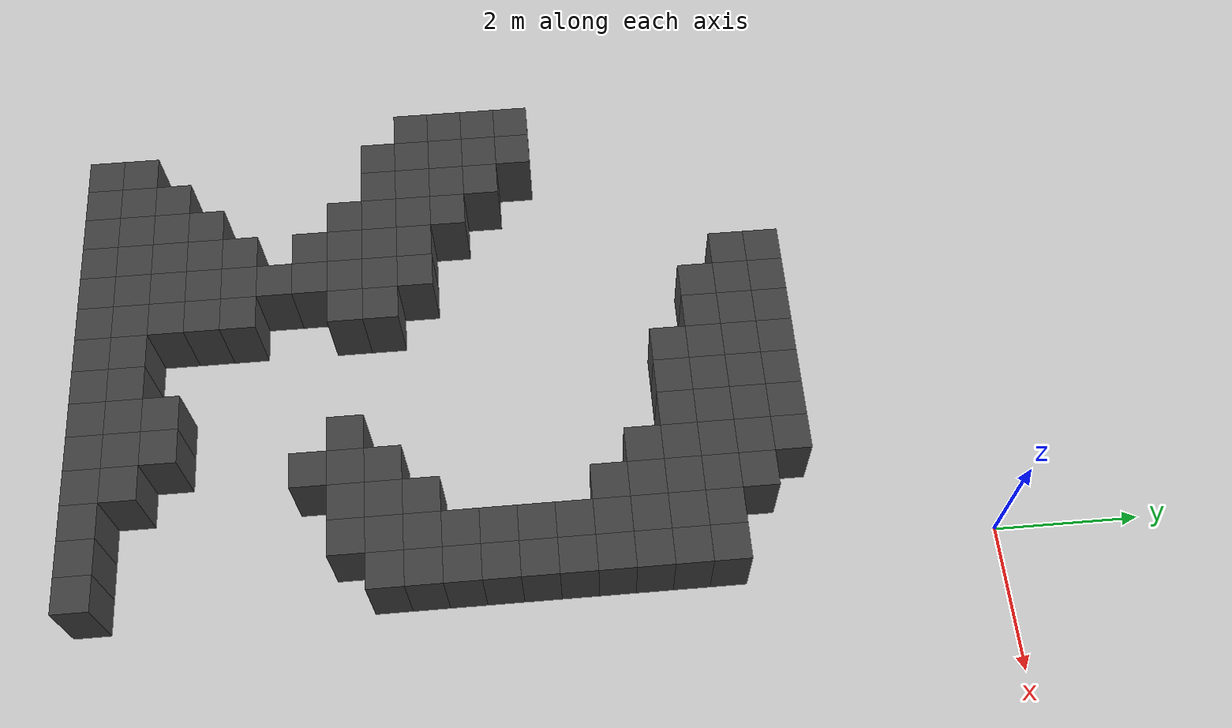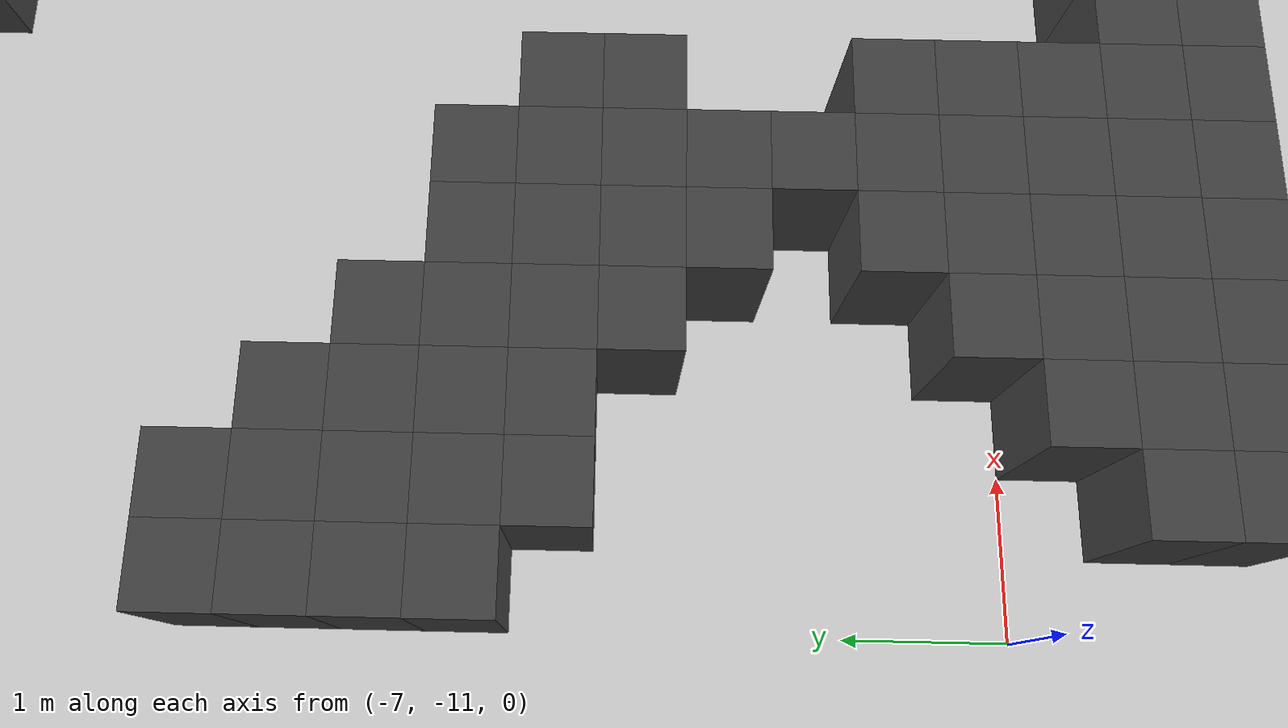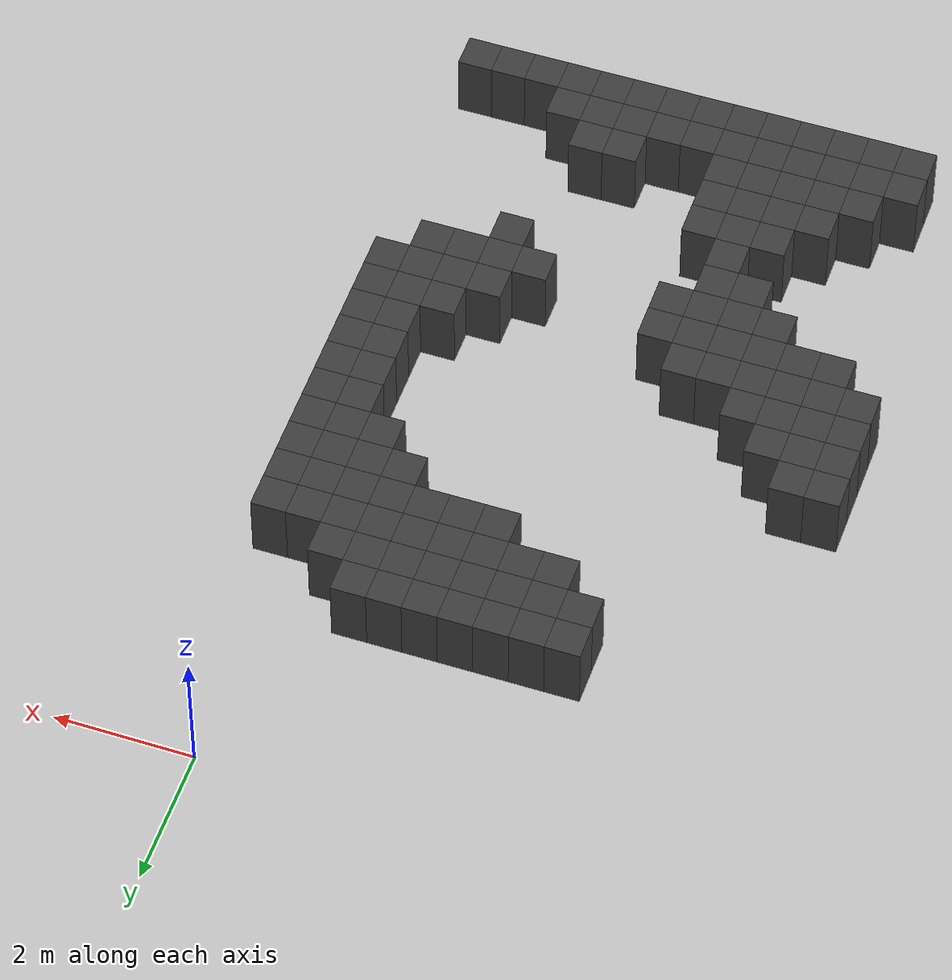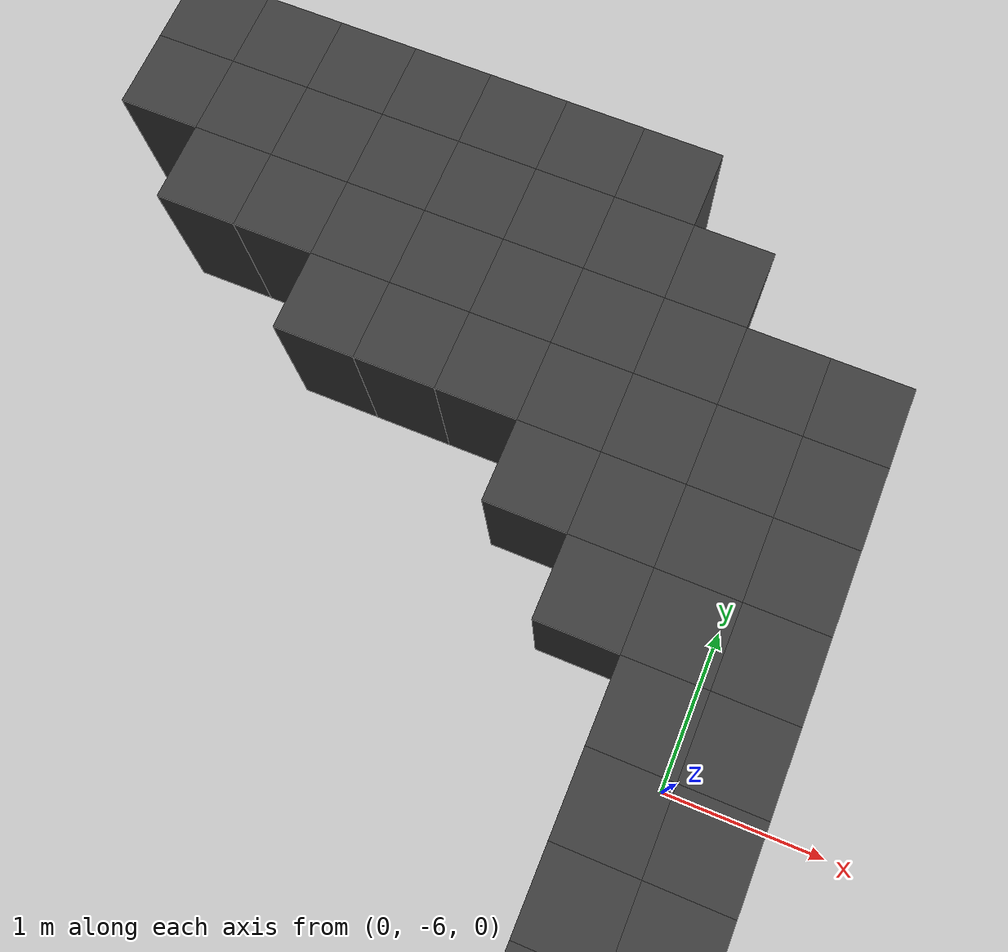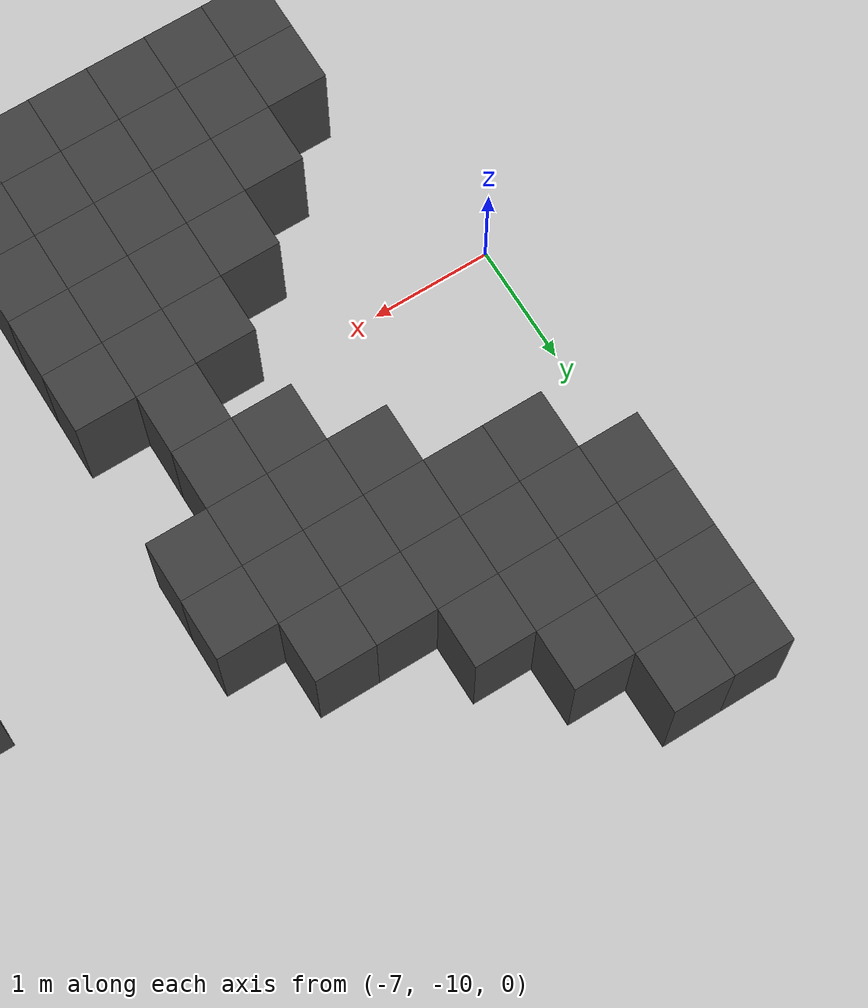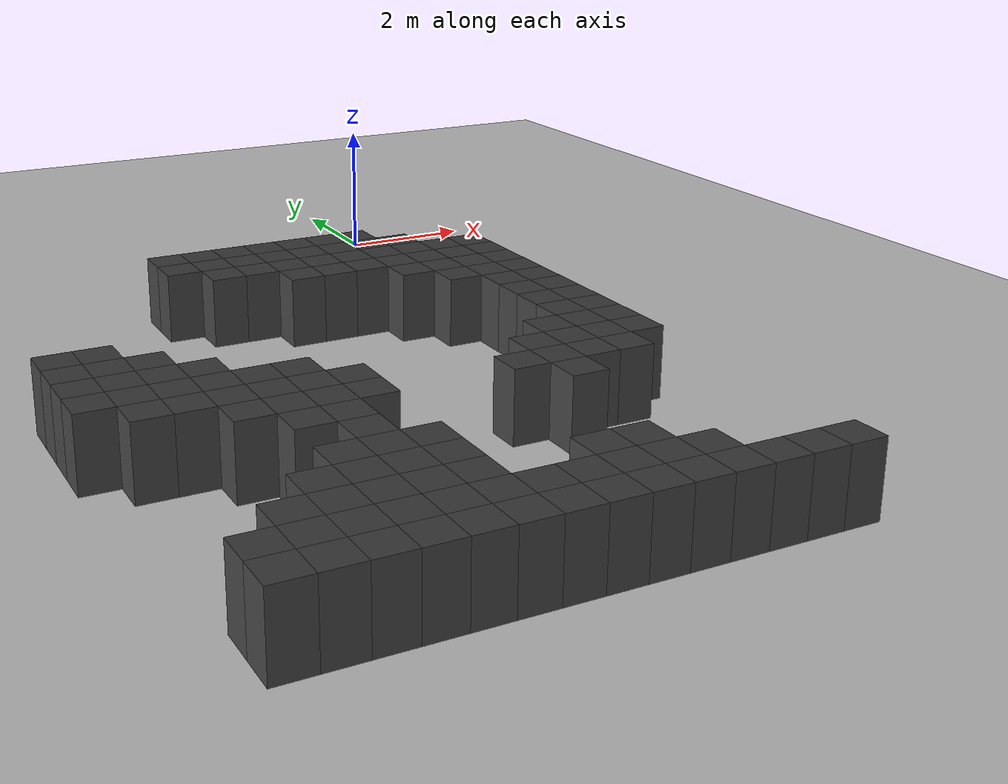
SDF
<sdf version="1.7">
 <world name="map_9687">
  <model name="ground_plane">
   <static>true</static>
   <link name="link">
    <collision name="collision">
     <geometry><plane><normal>0 0 1</normal><size>200 200</size></plane></geometry>
    </collision>
    <visual name="visual">
     <geometry><plane><normal>0 0 1</normal><size>200 200</size></plane></geometry>
     <material><ambient>0.8 0.8 0.8 1</ambient><diffuse>0.8 0.8 0.8 1</diffuse></material>
    </visual>
   </link>
  </model>
  <model name="maze_environment">
   <static>true</static>
   <link name="wall_581">
    <pose>-4.250 -2.750 0.500 0 0 0</pose>
    <collision name="col"><geometry><box><size>0.5 0.5 1.0</size></box></geometry></collision>
    <visual name="vis">
     <geometry><box><size>0.5 0.5 1.0</size></box></geometry>
     <material><ambient>0.15 0.15 0.15 1</ambient><diffuse>0.25 0.25 0.25 1</diffuse></material>
    </visual>
   </link>
   <link name="wall_582">
    <pose>-3.750 -2.750 0.500 0 0 0</pose>
    <collision name="col"><geometry><box><size>0.5 0.5 1.0</size></box></geometry></collision>
    <visual name="vis">
     <geometry><box><size>0.5 0.5 1.0</size></box></geometry>
     <material><ambient>0.15 0.15 0.15 1</ambient><diffuse>0.25 0.25 0.25 1</diffuse></material>
    </visual>
   </link>
   <link name="wall_583">
    <pose>-3.250 -2.750 0.500 0 0 0</pose>
    <collision name="col"><geometry><box><size>0.5 0.5 1.0</size></box></geometry></collision>
    <visual name="vis">
     <geometry><box><size>0.5 0.5 1.0</size></box></geometry>
     <material><ambient>0.15 0.15 0.15 1</ambient><diffuse>0.25 0.25 0.25 1</diffuse></material>
    </visual>
   </link>
   <link name="wall_584">
    <pose>-2.750 -2.750 0.500 0 0 0</pose>
    <collision name="col"><geometry><box><size>0.5 0.5 1.0</size></box></geometry></collision>
    <visual name="vis">
     <geometry><box><size>0.5 0.5 1.0</size></box></geometry>
     <material><ambient>0.15 0.15 0.15 1</ambient><diffuse>0.25 0.25 0.25 1</diffuse></material>
    </visual>
   </link>
   <link name="wall_585">
    <pose>-2.250 -2.750 0.500 0 0 0</pose>
    <collision name="col"><geometry><box><size>0.5 0.5 1.0</size></box></geometry></collision>
    <visual name="vis">
     <geometry><box><size>0.5 0.5 1.0</size></box></geometry>
     <material><ambient>0.15 0.15 0.15 1</ambient><diffuse>0.25 0.25 0.25 1</diffuse></material>
    </visual>
   </link>
   <link name="wall_586">
    <pose>-1.750 -2.750 0.500 0 0 0</pose>
    <collision name="col"><geometry><box><size>0.5 0.5 1.0</size></box></geometry></collision>
    <visual name="vis">
     <geometry><box><size>0.5 0.5 1.0</size></box></geometry>
     <material><ambient>0.15 0.15 0.15 1</ambient><diffuse>0.25 0.25 0.25 1</diffuse></material>
    </visual>
   </link>
   <link name="wall_587">
    <pose>-1.250 -2.750 0.500 0 0 0</pose>
    <collision name="col"><geometry><box><size>0.5 0.5 1.0</size></box></geometry></collision>
    <visual name="vis">
     <geometry><box><size>0.5 0.5 1.0</size></box></geometry>
     <material><ambient>0.15 0.15 0.15 1</ambient><diffuse>0.25 0.25 0.25 1</diffuse></material>
    </visual>
   </link>
   <link name="wall_609">
    <pose>-4.250 -3.250 0.500 0 0 0</pose>
    <collision name="col"><geometry><box><size>0.5 0.5 1.0</size></box></geometry></collision>
    <visual name="vis">
     <geometry><box><size>0.5 0.5 1.0</size></box></geometry>
     <material><ambient>0.15 0.15 0.15 1</ambient><diffuse>0.25 0.25 0.25 1</diffuse></material>
    </visual>
   </link>
   <link name="wall_610">
    <pose>-3.750 -3.250 0.500 0 0 0</pose>
    <collision name="col"><geometry><box><size>0.5 0.5 1.0</size></box></geometry></collision>
    <visual name="vis">
     <geometry><box><size>0.5 0.5 1.0</size></box></geometry>
     <material><ambient>0.15 0.15 0.15 1</ambient><diffuse>0.25 0.25 0.25 1</diffuse></material>
    </visual>
   </link>
   <link name="wall_611">
    <pose>-3.250 -3.250 0.500 0 0 0</pose>
    <collision name="col"><geometry><box><size>0.5 0.5 1.0</size></box></geometry></collision>
    <visual name="vis">
     <geometry><box><size>0.5 0.5 1.0</size></box></geometry>
     <material><ambient>0.15 0.15 0.15 1</ambient><diffuse>0.25 0.25 0.25 1</diffuse></material>
    </visual>
   </link>
   <link name="wall_612">
    <pose>-2.750 -3.250 0.500 0 0 0</pose>
    <collision name="col"><geometry><box><size>0.5 0.5 1.0</size></box></geometry></collision>
    <visual name="vis">
     <geometry><box><size>0.5 0.5 1.0</size></box></geometry>
     <material><ambient>0.15 0.15 0.15 1</ambient><diffuse>0.25 0.25 0.25 1</diffuse></material>
    </visual>
   </link>
   <link name="wall_613">
    <pose>-2.250 -3.250 0.500 0 0 0</pose>
    <collision name="col"><geometry><box><size>0.5 0.5 1.0</size></box></geometry></collision>
    <visual name="vis">
     <geometry><box><size>0.5 0.5 1.0</size></box></geometry>
     <material><ambient>0.15 0.15 0.15 1</ambient><diffuse>0.25 0.25 0.25 1</diffuse></material>
    </visual>
   </link>
   <link name="wall_614">
    <pose>-1.750 -3.250 0.500 0 0 0</pose>
    <collision name="col"><geometry><box><size>0.5 0.5 1.0</size></box></geometry></collision>
    <visual name="vis">
     <geometry><box><size>0.5 0.5 1.0</size></box></geometry>
     <material><ambient>0.15 0.15 0.15 1</ambient><diffuse>0.25 0.25 0.25 1</diffuse></material>
    </visual>
   </link>
   <link name="wall_615">
    <pose>-1.250 -3.250 0.500 0 0 0</pose>
    <collision name="col"><geometry><box><size>0.5 0.5 1.0</size></box></geometry></collision>
    <visual name="vis">
     <geometry><box><size>0.5 0.5 1.0</size></box></geometry>
     <material><ambient>0.15 0.15 0.15 1</ambient><diffuse>0.25 0.25 0.25 1</diffuse></material>
    </visual>
   </link>
   <link name="wall_616">
    <pose>-0.750 -3.250 0.500 0 0 0</pose>
    <collision name="col"><geometry><box><size>0.5 0.5 1.0</size></box></geometry></collision>
    <visual name="vis">
     <geometry><box><size>0.5 0.5 1.0</size></box></geometry>
     <material><ambient>0.15 0.15 0.15 1</ambient><diffuse>0.25 0.25 0.25 1</diffuse></material>
    </visual>
   </link>
   <link name="wall_637">
    <pose>-3.750 -3.750 0.500 0 0 0</pose>
    <collision name="col"><geometry><box><size>0.5 0.5 1.0</size></box></geometry></collision>
    <visual name="vis">
     <geometry><box><size>0.5 0.5 1.0</size></box></geometry>
     <material><ambient>0.15 0.15 0.15 1</ambient><diffuse>0.25 0.25 0.25 1</diffuse></material>
    </visual>
   </link>
   <link name="wall_638">
    <pose>-3.250 -3.750 0.500 0 0 0</pose>
    <collision name="col"><geometry><box><size>0.5 0.5 1.0</size></box></geometry></collision>
    <visual name="vis">
     <geometry><box><size>0.5 0.5 1.0</size></box></geometry>
     <material><ambient>0.15 0.15 0.15 1</ambient><diffuse>0.25 0.25 0.25 1</diffuse></material>
    </visual>
   </link>
   <link name="wall_639">
    <pose>-2.750 -3.750 0.500 0 0 0</pose>
    <collision name="col"><geometry><box><size>0.5 0.5 1.0</size></box></geometry></collision>
    <visual name="vis">
     <geometry><box><size>0.5 0.5 1.0</size></box></geometry>
     <material><ambient>0.15 0.15 0.15 1</ambient><diffuse>0.25 0.25 0.25 1</diffuse></material>
    </visual>
   </link>
   <link name="wall_640">
    <pose>-2.250 -3.750 0.500 0 0 0</pose>
    <collision name="col"><geometry><box><size>0.5 0.5 1.0</size></box></geometry></collision>
    <visual name="vis">
     <geometry><box><size>0.5 0.5 1.0</size></box></geometry>
     <material><ambient>0.15 0.15 0.15 1</ambient><diffuse>0.25 0.25 0.25 1</diffuse></material>
    </visual>
   </link>
   <link name="wall_641">
    <pose>-1.750 -3.750 0.500 0 0 0</pose>
    <collision name="col"><geometry><box><size>0.5 0.5 1.0</size></box></geometry></collision>
    <visual name="vis">
     <geometry><box><size>0.5 0.5 1.0</size></box></geometry>
     <material><ambient>0.15 0.15 0.15 1</ambient><diffuse>0.25 0.25 0.25 1</diffuse></material>
    </visual>
   </link>
   <link name="wall_642">
    <pose>-1.250 -3.750 0.500 0 0 0</pose>
    <collision name="col"><geometry><box><size>0.5 0.5 1.0</size></box></geometry></collision>
    <visual name="vis">
     <geometry><box><size>0.5 0.5 1.0</size></box></geometry>
     <material><ambient>0.15 0.15 0.15 1</ambient><diffuse>0.25 0.25 0.25 1</diffuse></material>
    </visual>
   </link>
   <link name="wall_643">
    <pose>-0.750 -3.750 0.500 0 0 0</pose>
    <collision name="col"><geometry><box><size>0.5 0.5 1.0</size></box></geometry></collision>
    <visual name="vis">
     <geometry><box><size>0.5 0.5 1.0</size></box></geometry>
     <material><ambient>0.15 0.15 0.15 1</ambient><diffuse>0.25 0.25 0.25 1</diffuse></material>
    </visual>
   </link>
   <link name="wall_644">
    <pose>-0.250 -3.750 0.500 0 0 0</pose>
    <collision name="col"><geometry><box><size>0.5 0.5 1.0</size></box></geometry></collision>
    <visual name="vis">
     <geometry><box><size>0.5 0.5 1.0</size></box></geometry>
     <material><ambient>0.15 0.15 0.15 1</ambient><diffuse>0.25 0.25 0.25 1</diffuse></material>
    </visual>
   </link>
   <link name="wall_645">
    <pose>0.250 -3.750 0.500 0 0 0</pose>
    <collision name="col"><geometry><box><size>0.5 0.5 1.0</size></box></geometry></collision>
    <visual name="vis">
     <geometry><box><size>0.5 0.5 1.0</size></box></geometry>
     <material><ambient>0.15 0.15 0.15 1</ambient><diffuse>0.25 0.25 0.25 1</diffuse></material>
    </visual>
   </link>
   <link name="wall_666">
    <pose>-2.750 -4.250 0.500 0 0 0</pose>
    <collision name="col"><geometry><box><size>0.5 0.5 1.0</size></box></geometry></collision>
    <visual name="vis">
     <geometry><box><size>0.5 0.5 1.0</size></box></geometry>
     <material><ambient>0.15 0.15 0.15 1</ambient><diffuse>0.25 0.25 0.25 1</diffuse></material>
    </visual>
   </link>
   <link name="wall_667">
    <pose>-2.250 -4.250 0.500 0 0 0</pose>
    <collision name="col"><geometry><box><size>0.5 0.5 1.0</size></box></geometry></collision>
    <visual name="vis">
     <geometry><box><size>0.5 0.5 1.0</size></box></geometry>
     <material><ambient>0.15 0.15 0.15 1</ambient><diffuse>0.25 0.25 0.25 1</diffuse></material>
    </visual>
   </link>
   <link name="wall_668">
    <pose>-1.750 -4.250 0.500 0 0 0</pose>
    <collision name="col"><geometry><box><size>0.5 0.5 1.0</size></box></geometry></collision>
    <visual name="vis">
     <geometry><box><size>0.5 0.5 1.0</size></box></geometry>
     <material><ambient>0.15 0.15 0.15 1</ambient><diffuse>0.25 0.25 0.25 1</diffuse></material>
    </visual>
   </link>
   <link name="wall_669">
    <pose>-1.250 -4.250 0.500 0 0 0</pose>
    <collision name="col"><geometry><box><size>0.5 0.5 1.0</size></box></geometry></collision>
    <visual name="vis">
     <geometry><box><size>0.5 0.5 1.0</size></box></geometry>
     <material><ambient>0.15 0.15 0.15 1</ambient><diffuse>0.25 0.25 0.25 1</diffuse></material>
    </visual>
   </link>
   <link name="wall_670">
    <pose>-0.750 -4.250 0.500 0 0 0</pose>
    <collision name="col"><geometry><box><size>0.5 0.5 1.0</size></box></geometry></collision>
    <visual name="vis">
     <geometry><box><size>0.5 0.5 1.0</size></box></geometry>
     <material><ambient>0.15 0.15 0.15 1</ambient><diffuse>0.25 0.25 0.25 1</diffuse></material>
    </visual>
   </link>
   <link name="wall_671">
    <pose>-0.250 -4.250 0.500 0 0 0</pose>
    <collision name="col"><geometry><box><size>0.5 0.5 1.0</size></box></geometry></collision>
    <visual name="vis">
     <geometry><box><size>0.5 0.5 1.0</size></box></geometry>
     <material><ambient>0.15 0.15 0.15 1</ambient><diffuse>0.25 0.25 0.25 1</diffuse></material>
    </visual>
   </link>
   <link name="wall_672">
    <pose>0.250 -4.250 0.500 0 0 0</pose>
    <collision name="col"><geometry><box><size>0.5 0.5 1.0</size></box></geometry></collision>
    <visual name="vis">
     <geometry><box><size>0.5 0.5 1.0</size></box></geometry>
     <material><ambient>0.15 0.15 0.15 1</ambient><diffuse>0.25 0.25 0.25 1</diffuse></material>
    </visual>
   </link>
   <link name="wall_692">
    <pose>-1.250 -4.750 0.500 0 0 0</pose>
    <collision name="col"><geometry><box><size>0.5 0.5 1.0</size></box></geometry></collision>
    <visual name="vis">
     <geometry><box><size>0.5 0.5 1.0</size></box></geometry>
     <material><ambient>0.15 0.15 0.15 1</ambient><diffuse>0.25 0.25 0.25 1</diffuse></material>
    </visual>
   </link>
   <link name="wall_693">
    <pose>-0.750 -4.750 0.500 0 0 0</pose>
    <collision name="col"><geometry><box><size>0.5 0.5 1.0</size></box></geometry></collision>
    <visual name="vis">
     <geometry><box><size>0.5 0.5 1.0</size></box></geometry>
     <material><ambient>0.15 0.15 0.15 1</ambient><diffuse>0.25 0.25 0.25 1</diffuse></material>
    </visual>
   </link>
   <link name="wall_694">
    <pose>-0.250 -4.750 0.500 0 0 0</pose>
    <collision name="col"><geometry><box><size>0.5 0.5 1.0</size></box></geometry></collision>
    <visual name="vis">
     <geometry><box><size>0.5 0.5 1.0</size></box></geometry>
     <material><ambient>0.15 0.15 0.15 1</ambient><diffuse>0.25 0.25 0.25 1</diffuse></material>
    </visual>
   </link>
   <link name="wall_695">
    <pose>0.250 -4.750 0.500 0 0 0</pose>
    <collision name="col"><geometry><box><size>0.5 0.5 1.0</size></box></geometry></collision>
    <visual name="vis">
     <geometry><box><size>0.5 0.5 1.0</size></box></geometry>
     <material><ambient>0.15 0.15 0.15 1</ambient><diffuse>0.25 0.25 0.25 1</diffuse></material>
    </visual>
   </link>
   <link name="wall_715">
    <pose>-0.750 -5.250 0.500 0 0 0</pose>
    <collision name="col"><geometry><box><size>0.5 0.5 1.0</size></box></geometry></collision>
    <visual name="vis">
     <geometry><box><size>0.5 0.5 1.0</size></box></geometry>
     <material><ambient>0.15 0.15 0.15 1</ambient><diffuse>0.25 0.25 0.25 1</diffuse></material>
    </visual>
   </link>
   <link name="wall_716">
    <pose>-0.250 -5.250 0.500 0 0 0</pose>
    <collision name="col"><geometry><box><size>0.5 0.5 1.0</size></box></geometry></collision>
    <visual name="vis">
     <geometry><box><size>0.5 0.5 1.0</size></box></geometry>
     <material><ambient>0.15 0.15 0.15 1</ambient><diffuse>0.25 0.25 0.25 1</diffuse></material>
    </visual>
   </link>
   <link name="wall_717">
    <pose>0.250 -5.250 0.500 0 0 0</pose>
    <collision name="col"><geometry><box><size>0.5 0.5 1.0</size></box></geometry></collision>
    <visual name="vis">
     <geometry><box><size>0.5 0.5 1.0</size></box></geometry>
     <material><ambient>0.15 0.15 0.15 1</ambient><diffuse>0.25 0.25 0.25 1</diffuse></material>
    </visual>
   </link>
   <link name="wall_735">
    <pose>-0.250 -5.750 0.500 0 0 0</pose>
    <collision name="col"><geometry><box><size>0.5 0.5 1.0</size></box></geometry></collision>
    <visual name="vis">
     <geometry><box><size>0.5 0.5 1.0</size></box></geometry>
     <material><ambient>0.15 0.15 0.15 1</ambient><diffuse>0.25 0.25 0.25 1</diffuse></material>
    </visual>
   </link>
   <link name="wall_736">
    <pose>0.250 -5.750 0.500 0 0 0</pose>
    <collision name="col"><geometry><box><size>0.5 0.5 1.0</size></box></geometry></collision>
    <visual name="vis">
     <geometry><box><size>0.5 0.5 1.0</size></box></geometry>
     <material><ambient>0.15 0.15 0.15 1</ambient><diffuse>0.25 0.25 0.25 1</diffuse></material>
    </visual>
   </link>
   <link name="wall_750">
    <pose>-6.750 -6.250 0.500 0 0 0</pose>
    <collision name="col"><geometry><box><size>0.5 0.5 1.0</size></box></geometry></collision>
    <visual name="vis">
     <geometry><box><size>0.5 0.5 1.0</size></box></geometry>
     <material><ambient>0.15 0.15 0.15 1</ambient><diffuse>0.25 0.25 0.25 1</diffuse></material>
    </visual>
   </link>
   <link name="wall_751">
    <pose>-6.250 -6.250 0.500 0 0 0</pose>
    <collision name="col"><geometry><box><size>0.5 0.5 1.0</size></box></geometry></collision>
    <visual name="vis">
     <geometry><box><size>0.5 0.5 1.0</size></box></geometry>
     <material><ambient>0.15 0.15 0.15 1</ambient><diffuse>0.25 0.25 0.25 1</diffuse></material>
    </visual>
   </link>
   <link name="wall_752">
    <pose>-0.250 -6.250 0.500 0 0 0</pose>
    <collision name="col"><geometry><box><size>0.5 0.5 1.0</size></box></geometry></collision>
    <visual name="vis">
     <geometry><box><size>0.5 0.5 1.0</size></box></geometry>
     <material><ambient>0.15 0.15 0.15 1</ambient><diffuse>0.25 0.25 0.25 1</diffuse></material>
    </visual>
   </link>
   <link name="wall_753">
    <pose>0.250 -6.250 0.500 0 0 0</pose>
    <collision name="col"><geometry><box><size>0.5 0.5 1.0</size></box></geometry></collision>
    <visual name="vis">
     <geometry><box><size>0.5 0.5 1.0</size></box></geometry>
     <material><ambient>0.15 0.15 0.15 1</ambient><diffuse>0.25 0.25 0.25 1</diffuse></material>
    </visual>
   </link>
   <link name="wall_764">
    <pose>-6.750 -6.750 0.500 0 0 0</pose>
    <collision name="col"><geometry><box><size>0.5 0.5 1.0</size></box></geometry></collision>
    <visual name="vis">
     <geometry><box><size>0.5 0.5 1.0</size></box></geometry>
     <material><ambient>0.15 0.15 0.15 1</ambient><diffuse>0.25 0.25 0.25 1</diffuse></material>
    </visual>
   </link>
   <link name="wall_765">
    <pose>-6.250 -6.750 0.500 0 0 0</pose>
    <collision name="col"><geometry><box><size>0.5 0.5 1.0</size></box></geometry></collision>
    <visual name="vis">
     <geometry><box><size>0.5 0.5 1.0</size></box></geometry>
     <material><ambient>0.15 0.15 0.15 1</ambient><diffuse>0.25 0.25 0.25 1</diffuse></material>
    </visual>
   </link>
   <link name="wall_766">
    <pose>-5.750 -6.750 0.500 0 0 0</pose>
    <collision name="col"><geometry><box><size>0.5 0.5 1.0</size></box></geometry></collision>
    <visual name="vis">
     <geometry><box><size>0.5 0.5 1.0</size></box></geometry>
     <material><ambient>0.15 0.15 0.15 1</ambient><diffuse>0.25 0.25 0.25 1</diffuse></material>
    </visual>
   </link>
   <link name="wall_767">
    <pose>-0.250 -6.750 0.500 0 0 0</pose>
    <collision name="col"><geometry><box><size>0.5 0.5 1.0</size></box></geometry></collision>
    <visual name="vis">
     <geometry><box><size>0.5 0.5 1.0</size></box></geometry>
     <material><ambient>0.15 0.15 0.15 1</ambient><diffuse>0.25 0.25 0.25 1</diffuse></material>
    </visual>
   </link>
   <link name="wall_768">
    <pose>0.250 -6.750 0.500 0 0 0</pose>
    <collision name="col"><geometry><box><size>0.5 0.5 1.0</size></box></geometry></collision>
    <visual name="vis">
     <geometry><box><size>0.5 0.5 1.0</size></box></geometry>
     <material><ambient>0.15 0.15 0.15 1</ambient><diffuse>0.25 0.25 0.25 1</diffuse></material>
    </visual>
   </link>
   <link name="wall_779">
    <pose>-6.750 -7.250 0.500 0 0 0</pose>
    <collision name="col"><geometry><box><size>0.5 0.5 1.0</size></box></geometry></collision>
    <visual name="vis">
     <geometry><box><size>0.5 0.5 1.0</size></box></geometry>
     <material><ambient>0.15 0.15 0.15 1</ambient><diffuse>0.25 0.25 0.25 1</diffuse></material>
    </visual>
   </link>
   <link name="wall_780">
    <pose>-6.250 -7.250 0.500 0 0 0</pose>
    <collision name="col"><geometry><box><size>0.5 0.5 1.0</size></box></geometry></collision>
    <visual name="vis">
     <geometry><box><size>0.5 0.5 1.0</size></box></geometry>
     <material><ambient>0.15 0.15 0.15 1</ambient><diffuse>0.25 0.25 0.25 1</diffuse></material>
    </visual>
   </link>
   <link name="wall_781">
    <pose>-5.750 -7.250 0.500 0 0 0</pose>
    <collision name="col"><geometry><box><size>0.5 0.5 1.0</size></box></geometry></collision>
    <visual name="vis">
     <geometry><box><size>0.5 0.5 1.0</size></box></geometry>
     <material><ambient>0.15 0.15 0.15 1</ambient><diffuse>0.25 0.25 0.25 1</diffuse></material>
    </visual>
   </link>
   <link name="wall_782">
    <pose>-5.250 -7.250 0.500 0 0 0</pose>
    <collision name="col"><geometry><box><size>0.5 0.5 1.0</size></box></geometry></collision>
    <visual name="vis">
     <geometry><box><size>0.5 0.5 1.0</size></box></geometry>
     <material><ambient>0.15 0.15 0.15 1</ambient><diffuse>0.25 0.25 0.25 1</diffuse></material>
    </visual>
   </link>
   <link name="wall_783">
    <pose>-0.250 -7.250 0.500 0 0 0</pose>
    <collision name="col"><geometry><box><size>0.5 0.5 1.0</size></box></geometry></collision>
    <visual name="vis">
     <geometry><box><size>0.5 0.5 1.0</size></box></geometry>
     <material><ambient>0.15 0.15 0.15 1</ambient><diffuse>0.25 0.25 0.25 1</diffuse></material>
    </visual>
   </link>
   <link name="wall_784">
    <pose>0.250 -7.250 0.500 0 0 0</pose>
    <collision name="col"><geometry><box><size>0.5 0.5 1.0</size></box></geometry></collision>
    <visual name="vis">
     <geometry><box><size>0.5 0.5 1.0</size></box></geometry>
     <material><ambient>0.15 0.15 0.15 1</ambient><diffuse>0.25 0.25 0.25 1</diffuse></material>
    </visual>
   </link>
   <link name="wall_794">
    <pose>-6.750 -7.750 0.500 0 0 0</pose>
    <collision name="col"><geometry><box><size>0.5 0.5 1.0</size></box></geometry></collision>
    <visual name="vis">
     <geometry><box><size>0.5 0.5 1.0</size></box></geometry>
     <material><ambient>0.15 0.15 0.15 1</ambient><diffuse>0.25 0.25 0.25 1</diffuse></material>
    </visual>
   </link>
   <link name="wall_795">
    <pose>-6.250 -7.750 0.500 0 0 0</pose>
    <collision name="col"><geometry><box><size>0.5 0.5 1.0</size></box></geometry></collision>
    <visual name="vis">
     <geometry><box><size>0.5 0.5 1.0</size></box></geometry>
     <material><ambient>0.15 0.15 0.15 1</ambient><diffuse>0.25 0.25 0.25 1</diffuse></material>
    </visual>
   </link>
   <link name="wall_796">
    <pose>-5.750 -7.750 0.500 0 0 0</pose>
    <collision name="col"><geometry><box><size>0.5 0.5 1.0</size></box></geometry></collision>
    <visual name="vis">
     <geometry><box><size>0.5 0.5 1.0</size></box></geometry>
     <material><ambient>0.15 0.15 0.15 1</ambient><diffuse>0.25 0.25 0.25 1</diffuse></material>
    </visual>
   </link>
   <link name="wall_797">
    <pose>-5.250 -7.750 0.500 0 0 0</pose>
    <collision name="col"><geometry><box><size>0.5 0.5 1.0</size></box></geometry></collision>
    <visual name="vis">
     <geometry><box><size>0.5 0.5 1.0</size></box></geometry>
     <material><ambient>0.15 0.15 0.15 1</ambient><diffuse>0.25 0.25 0.25 1</diffuse></material>
    </visual>
   </link>
   <link name="wall_798">
    <pose>-4.750 -7.750 0.500 0 0 0</pose>
    <collision name="col"><geometry><box><size>0.5 0.5 1.0</size></box></geometry></collision>
    <visual name="vis">
     <geometry><box><size>0.5 0.5 1.0</size></box></geometry>
     <material><ambient>0.15 0.15 0.15 1</ambient><diffuse>0.25 0.25 0.25 1</diffuse></material>
    </visual>
   </link>
   <link name="wall_799">
    <pose>-4.250 -7.750 0.500 0 0 0</pose>
    <collision name="col"><geometry><box><size>0.5 0.5 1.0</size></box></geometry></collision>
    <visual name="vis">
     <geometry><box><size>0.5 0.5 1.0</size></box></geometry>
     <material><ambient>0.15 0.15 0.15 1</ambient><diffuse>0.25 0.25 0.25 1</diffuse></material>
    </visual>
   </link>
   <link name="wall_800">
    <pose>-0.750 -7.750 0.500 0 0 0</pose>
    <collision name="col"><geometry><box><size>0.5 0.5 1.0</size></box></geometry></collision>
    <visual name="vis">
     <geometry><box><size>0.5 0.5 1.0</size></box></geometry>
     <material><ambient>0.15 0.15 0.15 1</ambient><diffuse>0.25 0.25 0.25 1</diffuse></material>
    </visual>
   </link>
   <link name="wall_801">
    <pose>-0.250 -7.750 0.500 0 0 0</pose>
    <collision name="col"><geometry><box><size>0.5 0.5 1.0</size></box></geometry></collision>
    <visual name="vis">
     <geometry><box><size>0.5 0.5 1.0</size></box></geometry>
     <material><ambient>0.15 0.15 0.15 1</ambient><diffuse>0.25 0.25 0.25 1</diffuse></material>
    </visual>
   </link>
   <link name="wall_802">
    <pose>0.250 -7.750 0.500 0 0 0</pose>
    <collision name="col"><geometry><box><size>0.5 0.5 1.0</size></box></geometry></collision>
    <visual name="vis">
     <geometry><box><size>0.5 0.5 1.0</size></box></geometry>
     <material><ambient>0.15 0.15 0.15 1</ambient><diffuse>0.25 0.25 0.25 1</diffuse></material>
    </visual>
   </link>
   <link name="wall_811">
    <pose>-6.250 -8.250 0.500 0 0 0</pose>
    <collision name="col"><geometry><box><size>0.5 0.5 1.0</size></box></geometry></collision>
    <visual name="vis">
     <geometry><box><size>0.5 0.5 1.0</size></box></geometry>
     <material><ambient>0.15 0.15 0.15 1</ambient><diffuse>0.25 0.25 0.25 1</diffuse></material>
    </visual>
   </link>
   <link name="wall_812">
    <pose>-5.750 -8.250 0.500 0 0 0</pose>
    <collision name="col"><geometry><box><size>0.5 0.5 1.0</size></box></geometry></collision>
    <visual name="vis">
     <geometry><box><size>0.5 0.5 1.0</size></box></geometry>
     <material><ambient>0.15 0.15 0.15 1</ambient><diffuse>0.25 0.25 0.25 1</diffuse></material>
    </visual>
   </link>
   <link name="wall_813">
    <pose>-5.250 -8.250 0.500 0 0 0</pose>
    <collision name="col"><geometry><box><size>0.5 0.5 1.0</size></box></geometry></collision>
    <visual name="vis">
     <geometry><box><size>0.5 0.5 1.0</size></box></geometry>
     <material><ambient>0.15 0.15 0.15 1</ambient><diffuse>0.25 0.25 0.25 1</diffuse></material>
    </visual>
   </link>
   <link name="wall_814">
    <pose>-4.750 -8.250 0.500 0 0 0</pose>
    <collision name="col"><geometry><box><size>0.5 0.5 1.0</size></box></geometry></collision>
    <visual name="vis">
     <geometry><box><size>0.5 0.5 1.0</size></box></geometry>
     <material><ambient>0.15 0.15 0.15 1</ambient><diffuse>0.25 0.25 0.25 1</diffuse></material>
    </visual>
   </link>
   <link name="wall_815">
    <pose>-4.250 -8.250 0.500 0 0 0</pose>
    <collision name="col"><geometry><box><size>0.5 0.5 1.0</size></box></geometry></collision>
    <visual name="vis">
     <geometry><box><size>0.5 0.5 1.0</size></box></geometry>
     <material><ambient>0.15 0.15 0.15 1</ambient><diffuse>0.25 0.25 0.25 1</diffuse></material>
    </visual>
   </link>
   <link name="wall_816">
    <pose>-3.750 -8.250 0.500 0 0 0</pose>
    <collision name="col"><geometry><box><size>0.5 0.5 1.0</size></box></geometry></collision>
    <visual name="vis">
     <geometry><box><size>0.5 0.5 1.0</size></box></geometry>
     <material><ambient>0.15 0.15 0.15 1</ambient><diffuse>0.25 0.25 0.25 1</diffuse></material>
    </visual>
   </link>
   <link name="wall_817">
    <pose>-1.250 -8.250 0.500 0 0 0</pose>
    <collision name="col"><geometry><box><size>0.5 0.5 1.0</size></box></geometry></collision>
    <visual name="vis">
     <geometry><box><size>0.5 0.5 1.0</size></box></geometry>
     <material><ambient>0.15 0.15 0.15 1</ambient><diffuse>0.25 0.25 0.25 1</diffuse></material>
    </visual>
   </link>
   <link name="wall_818">
    <pose>-0.750 -8.250 0.500 0 0 0</pose>
    <collision name="col"><geometry><box><size>0.5 0.5 1.0</size></box></geometry></collision>
    <visual name="vis">
     <geometry><box><size>0.5 0.5 1.0</size></box></geometry>
     <material><ambient>0.15 0.15 0.15 1</ambient><diffuse>0.25 0.25 0.25 1</diffuse></material>
    </visual>
   </link>
   <link name="wall_819">
    <pose>-0.250 -8.250 0.500 0 0 0</pose>
    <collision name="col"><geometry><box><size>0.5 0.5 1.0</size></box></geometry></collision>
    <visual name="vis">
     <geometry><box><size>0.5 0.5 1.0</size></box></geometry>
     <material><ambient>0.15 0.15 0.15 1</ambient><diffuse>0.25 0.25 0.25 1</diffuse></material>
    </visual>
   </link>
   <link name="wall_820">
    <pose>0.250 -8.250 0.500 0 0 0</pose>
    <collision name="col"><geometry><box><size>0.5 0.5 1.0</size></box></geometry></collision>
    <visual name="vis">
     <geometry><box><size>0.5 0.5 1.0</size></box></geometry>
     <material><ambient>0.15 0.15 0.15 1</ambient><diffuse>0.25 0.25 0.25 1</diffuse></material>
    </visual>
   </link>
   <link name="wall_831">
    <pose>-5.250 -8.750 0.500 0 0 0</pose>
    <collision name="col"><geometry><box><size>0.5 0.5 1.0</size></box></geometry></collision>
    <visual name="vis">
     <geometry><box><size>0.5 0.5 1.0</size></box></geometry>
     <material><ambient>0.15 0.15 0.15 1</ambient><diffuse>0.25 0.25 0.25 1</diffuse></material>
    </visual>
   </link>
   <link name="wall_832">
    <pose>-4.750 -8.750 0.500 0 0 0</pose>
    <collision name="col"><geometry><box><size>0.5 0.5 1.0</size></box></geometry></collision>
    <visual name="vis">
     <geometry><box><size>0.5 0.5 1.0</size></box></geometry>
     <material><ambient>0.15 0.15 0.15 1</ambient><diffuse>0.25 0.25 0.25 1</diffuse></material>
    </visual>
   </link>
   <link name="wall_833">
    <pose>-4.250 -8.750 0.500 0 0 0</pose>
    <collision name="col"><geometry><box><size>0.5 0.5 1.0</size></box></geometry></collision>
    <visual name="vis">
     <geometry><box><size>0.5 0.5 1.0</size></box></geometry>
     <material><ambient>0.15 0.15 0.15 1</ambient><diffuse>0.25 0.25 0.25 1</diffuse></material>
    </visual>
   </link>
   <link name="wall_834">
    <pose>-3.750 -8.750 0.500 0 0 0</pose>
    <collision name="col"><geometry><box><size>0.5 0.5 1.0</size></box></geometry></collision>
    <visual name="vis">
     <geometry><box><size>0.5 0.5 1.0</size></box></geometry>
     <material><ambient>0.15 0.15 0.15 1</ambient><diffuse>0.25 0.25 0.25 1</diffuse></material>
    </visual>
   </link>
   <link name="wall_835">
    <pose>-1.750 -8.750 0.500 0 0 0</pose>
    <collision name="col"><geometry><box><size>0.5 0.5 1.0</size></box></geometry></collision>
    <visual name="vis">
     <geometry><box><size>0.5 0.5 1.0</size></box></geometry>
     <material><ambient>0.15 0.15 0.15 1</ambient><diffuse>0.25 0.25 0.25 1</diffuse></material>
    </visual>
   </link>
   <link name="wall_836">
    <pose>-1.250 -8.750 0.500 0 0 0</pose>
    <collision name="col"><geometry><box><size>0.5 0.5 1.0</size></box></geometry></collision>
    <visual name="vis">
     <geometry><box><size>0.5 0.5 1.0</size></box></geometry>
     <material><ambient>0.15 0.15 0.15 1</ambient><diffuse>0.25 0.25 0.25 1</diffuse></material>
    </visual>
   </link>
   <link name="wall_837">
    <pose>-0.750 -8.750 0.500 0 0 0</pose>
    <collision name="col"><geometry><box><size>0.5 0.5 1.0</size></box></geometry></collision>
    <visual name="vis">
     <geometry><box><size>0.5 0.5 1.0</size></box></geometry>
     <material><ambient>0.15 0.15 0.15 1</ambient><diffuse>0.25 0.25 0.25 1</diffuse></material>
    </visual>
   </link>
   <link name="wall_838">
    <pose>-0.250 -8.750 0.500 0 0 0</pose>
    <collision name="col"><geometry><box><size>0.5 0.5 1.0</size></box></geometry></collision>
    <visual name="vis">
     <geometry><box><size>0.5 0.5 1.0</size></box></geometry>
     <material><ambient>0.15 0.15 0.15 1</ambient><diffuse>0.25 0.25 0.25 1</diffuse></material>
    </visual>
   </link>
   <link name="wall_850">
    <pose>-4.750 -9.250 0.500 0 0 0</pose>
    <collision name="col"><geometry><box><size>0.5 0.5 1.0</size></box></geometry></collision>
    <visual name="vis">
     <geometry><box><size>0.5 0.5 1.0</size></box></geometry>
     <material><ambient>0.15 0.15 0.15 1</ambient><diffuse>0.25 0.25 0.25 1</diffuse></material>
    </visual>
   </link>
   <link name="wall_851">
    <pose>-4.250 -9.250 0.500 0 0 0</pose>
    <collision name="col"><geometry><box><size>0.5 0.5 1.0</size></box></geometry></collision>
    <visual name="vis">
     <geometry><box><size>0.5 0.5 1.0</size></box></geometry>
     <material><ambient>0.15 0.15 0.15 1</ambient><diffuse>0.25 0.25 0.25 1</diffuse></material>
    </visual>
   </link>
   <link name="wall_852">
    <pose>-1.250 -9.250 0.500 0 0 0</pose>
    <collision name="col"><geometry><box><size>0.5 0.5 1.0</size></box></geometry></collision>
    <visual name="vis">
     <geometry><box><size>0.5 0.5 1.0</size></box></geometry>
     <material><ambient>0.15 0.15 0.15 1</ambient><diffuse>0.25 0.25 0.25 1</diffuse></material>
    </visual>
   </link>
   <link name="wall_863">
    <pose>-4.250 -9.750 0.500 0 0 0</pose>
    <collision name="col"><geometry><box><size>0.5 0.5 1.0</size></box></geometry></collision>
    <visual name="vis">
     <geometry><box><size>0.5 0.5 1.0</size></box></geometry>
     <material><ambient>0.15 0.15 0.15 1</ambient><diffuse>0.25 0.25 0.25 1</diffuse></material>
    </visual>
   </link>
   <link name="wall_875">
    <pose>-4.750 -10.250 0.500 0 0 0</pose>
    <collision name="col"><geometry><box><size>0.5 0.5 1.0</size></box></geometry></collision>
    <visual name="vis">
     <geometry><box><size>0.5 0.5 1.0</size></box></geometry>
     <material><ambient>0.15 0.15 0.15 1</ambient><diffuse>0.25 0.25 0.25 1</diffuse></material>
    </visual>
   </link>
   <link name="wall_876">
    <pose>-4.250 -10.250 0.500 0 0 0</pose>
    <collision name="col"><geometry><box><size>0.5 0.5 1.0</size></box></geometry></collision>
    <visual name="vis">
     <geometry><box><size>0.5 0.5 1.0</size></box></geometry>
     <material><ambient>0.15 0.15 0.15 1</ambient><diffuse>0.25 0.25 0.25 1</diffuse></material>
    </visual>
   </link>
   <link name="wall_877">
    <pose>-3.750 -10.250 0.500 0 0 0</pose>
    <collision name="col"><geometry><box><size>0.5 0.5 1.0</size></box></geometry></collision>
    <visual name="vis">
     <geometry><box><size>0.5 0.5 1.0</size></box></geometry>
     <material><ambient>0.15 0.15 0.15 1</ambient><diffuse>0.25 0.25 0.25 1</diffuse></material>
    </visual>
   </link>
   <link name="wall_887">
    <pose>-5.250 -10.750 0.500 0 0 0</pose>
    <collision name="col"><geometry><box><size>0.5 0.5 1.0</size></box></geometry></collision>
    <visual name="vis">
     <geometry><box><size>0.5 0.5 1.0</size></box></geometry>
     <material><ambient>0.15 0.15 0.15 1</ambient><diffuse>0.25 0.25 0.25 1</diffuse></material>
    </visual>
   </link>
   <link name="wall_888">
    <pose>-4.750 -10.750 0.500 0 0 0</pose>
    <collision name="col"><geometry><box><size>0.5 0.5 1.0</size></box></geometry></collision>
    <visual name="vis">
     <geometry><box><size>0.5 0.5 1.0</size></box></geometry>
     <material><ambient>0.15 0.15 0.15 1</ambient><diffuse>0.25 0.25 0.25 1</diffuse></material>
    </visual>
   </link>
   <link name="wall_889">
    <pose>-4.250 -10.750 0.500 0 0 0</pose>
    <collision name="col"><geometry><box><size>0.5 0.5 1.0</size></box></geometry></collision>
    <visual name="vis">
     <geometry><box><size>0.5 0.5 1.0</size></box></geometry>
     <material><ambient>0.15 0.15 0.15 1</ambient><diffuse>0.25 0.25 0.25 1</diffuse></material>
    </visual>
   </link>
   <link name="wall_890">
    <pose>-3.750 -10.750 0.500 0 0 0</pose>
    <collision name="col"><geometry><box><size>0.5 0.5 1.0</size></box></geometry></collision>
    <visual name="vis">
     <geometry><box><size>0.5 0.5 1.0</size></box></geometry>
     <material><ambient>0.15 0.15 0.15 1</ambient><diffuse>0.25 0.25 0.25 1</diffuse></material>
    </visual>
   </link>
   <link name="wall_903">
    <pose>-5.750 -11.250 0.500 0 0 0</pose>
    <collision name="col"><geometry><box><size>0.5 0.5 1.0</size></box></geometry></collision>
    <visual name="vis">
     <geometry><box><size>0.5 0.5 1.0</size></box></geometry>
     <material><ambient>0.15 0.15 0.15 1</ambient><diffuse>0.25 0.25 0.25 1</diffuse></material>
    </visual>
   </link>
   <link name="wall_904">
    <pose>-5.250 -11.250 0.500 0 0 0</pose>
    <collision name="col"><geometry><box><size>0.5 0.5 1.0</size></box></geometry></collision>
    <visual name="vis">
     <geometry><box><size>0.5 0.5 1.0</size></box></geometry>
     <material><ambient>0.15 0.15 0.15 1</ambient><diffuse>0.25 0.25 0.25 1</diffuse></material>
    </visual>
   </link>
   <link name="wall_905">
    <pose>-4.750 -11.250 0.500 0 0 0</pose>
    <collision name="col"><geometry><box><size>0.5 0.5 1.0</size></box></geometry></collision>
    <visual name="vis">
     <geometry><box><size>0.5 0.5 1.0</size></box></geometry>
     <material><ambient>0.15 0.15 0.15 1</ambient><diffuse>0.25 0.25 0.25 1</diffuse></material>
    </visual>
   </link>
   <link name="wall_906">
    <pose>-4.250 -11.250 0.500 0 0 0</pose>
    <collision name="col"><geometry><box><size>0.5 0.5 1.0</size></box></geometry></collision>
    <visual name="vis">
     <geometry><box><size>0.5 0.5 1.0</size></box></geometry>
     <material><ambient>0.15 0.15 0.15 1</ambient><diffuse>0.25 0.25 0.25 1</diffuse></material>
    </visual>
   </link>
   <link name="wall_907">
    <pose>-3.750 -11.250 0.500 0 0 0</pose>
    <collision name="col"><geometry><box><size>0.5 0.5 1.0</size></box></geometry></collision>
    <visual name="vis">
     <geometry><box><size>0.5 0.5 1.0</size></box></geometry>
     <material><ambient>0.15 0.15 0.15 1</ambient><diffuse>0.25 0.25 0.25 1</diffuse></material>
    </visual>
   </link>
   <link name="wall_908">
    <pose>-2.250 -11.250 0.500 0 0 0</pose>
    <collision name="col"><geometry><box><size>0.5 0.5 1.0</size></box></geometry></collision>
    <visual name="vis">
     <geometry><box><size>0.5 0.5 1.0</size></box></geometry>
     <material><ambient>0.15 0.15 0.15 1</ambient><diffuse>0.25 0.25 0.25 1</diffuse></material>
    </visual>
   </link>
   <link name="wall_909">
    <pose>-1.750 -11.250 0.500 0 0 0</pose>
    <collision name="col"><geometry><box><size>0.5 0.5 1.0</size></box></geometry></collision>
    <visual name="vis">
     <geometry><box><size>0.5 0.5 1.0</size></box></geometry>
     <material><ambient>0.15 0.15 0.15 1</ambient><diffuse>0.25 0.25 0.25 1</diffuse></material>
    </visual>
   </link>
   <link name="wall_926">
    <pose>-6.250 -11.750 0.500 0 0 0</pose>
    <collision name="col"><geometry><box><size>0.5 0.5 1.0</size></box></geometry></collision>
    <visual name="vis">
     <geometry><box><size>0.5 0.5 1.0</size></box></geometry>
     <material><ambient>0.15 0.15 0.15 1</ambient><diffuse>0.25 0.25 0.25 1</diffuse></material>
    </visual>
   </link>
   <link name="wall_927">
    <pose>-5.750 -11.750 0.500 0 0 0</pose>
    <collision name="col"><geometry><box><size>0.5 0.5 1.0</size></box></geometry></collision>
    <visual name="vis">
     <geometry><box><size>0.5 0.5 1.0</size></box></geometry>
     <material><ambient>0.15 0.15 0.15 1</ambient><diffuse>0.25 0.25 0.25 1</diffuse></material>
    </visual>
   </link>
   <link name="wall_928">
    <pose>-5.250 -11.750 0.500 0 0 0</pose>
    <collision name="col"><geometry><box><size>0.5 0.5 1.0</size></box></geometry></collision>
    <visual name="vis">
     <geometry><box><size>0.5 0.5 1.0</size></box></geometry>
     <material><ambient>0.15 0.15 0.15 1</ambient><diffuse>0.25 0.25 0.25 1</diffuse></material>
    </visual>
   </link>
   <link name="wall_929">
    <pose>-4.750 -11.750 0.500 0 0 0</pose>
    <collision name="col"><geometry><box><size>0.5 0.5 1.0</size></box></geometry></collision>
    <visual name="vis">
     <geometry><box><size>0.5 0.5 1.0</size></box></geometry>
     <material><ambient>0.15 0.15 0.15 1</ambient><diffuse>0.25 0.25 0.25 1</diffuse></material>
    </visual>
   </link>
   <link name="wall_930">
    <pose>-4.250 -11.750 0.500 0 0 0</pose>
    <collision name="col"><geometry><box><size>0.5 0.5 1.0</size></box></geometry></collision>
    <visual name="vis">
     <geometry><box><size>0.5 0.5 1.0</size></box></geometry>
     <material><ambient>0.15 0.15 0.15 1</ambient><diffuse>0.25 0.25 0.25 1</diffuse></material>
    </visual>
   </link>
   <link name="wall_931">
    <pose>-3.750 -11.750 0.500 0 0 0</pose>
    <collision name="col"><geometry><box><size>0.5 0.5 1.0</size></box></geometry></collision>
    <visual name="vis">
     <geometry><box><size>0.5 0.5 1.0</size></box></geometry>
     <material><ambient>0.15 0.15 0.15 1</ambient><diffuse>0.25 0.25 0.25 1</diffuse></material>
    </visual>
   </link>
   <link name="wall_932">
    <pose>-3.250 -11.750 0.500 0 0 0</pose>
    <collision name="col"><geometry><box><size>0.5 0.5 1.0</size></box></geometry></collision>
    <visual name="vis">
     <geometry><box><size>0.5 0.5 1.0</size></box></geometry>
     <material><ambient>0.15 0.15 0.15 1</ambient><diffuse>0.25 0.25 0.25 1</diffuse></material>
    </visual>
   </link>
   <link name="wall_933">
    <pose>-2.750 -11.750 0.500 0 0 0</pose>
    <collision name="col"><geometry><box><size>0.5 0.5 1.0</size></box></geometry></collision>
    <visual name="vis">
     <geometry><box><size>0.5 0.5 1.0</size></box></geometry>
     <material><ambient>0.15 0.15 0.15 1</ambient><diffuse>0.25 0.25 0.25 1</diffuse></material>
    </visual>
   </link>
   <link name="wall_934">
    <pose>-2.250 -11.750 0.500 0 0 0</pose>
    <collision name="col"><geometry><box><size>0.5 0.5 1.0</size></box></geometry></collision>
    <visual name="vis">
     <geometry><box><size>0.5 0.5 1.0</size></box></geometry>
     <material><ambient>0.15 0.15 0.15 1</ambient><diffuse>0.25 0.25 0.25 1</diffuse></material>
    </visual>
   </link>
   <link name="wall_935">
    <pose>-1.750 -11.750 0.500 0 0 0</pose>
    <collision name="col"><geometry><box><size>0.5 0.5 1.0</size></box></geometry></collision>
    <visual name="vis">
     <geometry><box><size>0.5 0.5 1.0</size></box></geometry>
     <material><ambient>0.15 0.15 0.15 1</ambient><diffuse>0.25 0.25 0.25 1</diffuse></material>
    </visual>
   </link>
   <link name="wall_936">
    <pose>-1.250 -11.750 0.500 0 0 0</pose>
    <collision name="col"><geometry><box><size>0.5 0.5 1.0</size></box></geometry></collision>
    <visual name="vis">
     <geometry><box><size>0.5 0.5 1.0</size></box></geometry>
     <material><ambient>0.15 0.15 0.15 1</ambient><diffuse>0.25 0.25 0.25 1</diffuse></material>
    </visual>
   </link>
   <link name="wall_959">
    <pose>-6.250 -12.250 0.500 0 0 0</pose>
    <collision name="col"><geometry><box><size>0.5 0.5 1.0</size></box></geometry></collision>
    <visual name="vis">
     <geometry><box><size>0.5 0.5 1.0</size></box></geometry>
     <material><ambient>0.15 0.15 0.15 1</ambient><diffuse>0.25 0.25 0.25 1</diffuse></material>
    </visual>
   </link>
   <link name="wall_960">
    <pose>-5.750 -12.250 0.500 0 0 0</pose>
    <collision name="col"><geometry><box><size>0.5 0.5 1.0</size></box></geometry></collision>
    <visual name="vis">
     <geometry><box><size>0.5 0.5 1.0</size></box></geometry>
     <material><ambient>0.15 0.15 0.15 1</ambient><diffuse>0.25 0.25 0.25 1</diffuse></material>
    </visual>
   </link>
   <link name="wall_961">
    <pose>-5.250 -12.250 0.500 0 0 0</pose>
    <collision name="col"><geometry><box><size>0.5 0.5 1.0</size></box></geometry></collision>
    <visual name="vis">
     <geometry><box><size>0.5 0.5 1.0</size></box></geometry>
     <material><ambient>0.15 0.15 0.15 1</ambient><diffuse>0.25 0.25 0.25 1</diffuse></material>
    </visual>
   </link>
   <link name="wall_962">
    <pose>-4.750 -12.250 0.500 0 0 0</pose>
    <collision name="col"><geometry><box><size>0.5 0.5 1.0</size></box></geometry></collision>
    <visual name="vis">
     <geometry><box><size>0.5 0.5 1.0</size></box></geometry>
     <material><ambient>0.15 0.15 0.15 1</ambient><diffuse>0.25 0.25 0.25 1</diffuse></material>
    </visual>
   </link>
   <link name="wall_963">
    <pose>-4.250 -12.250 0.500 0 0 0</pose>
    <collision name="col"><geometry><box><size>0.5 0.5 1.0</size></box></geometry></collision>
    <visual name="vis">
     <geometry><box><size>0.5 0.5 1.0</size></box></geometry>
     <material><ambient>0.15 0.15 0.15 1</ambient><diffuse>0.25 0.25 0.25 1</diffuse></material>
    </visual>
   </link>
   <link name="wall_964">
    <pose>-3.750 -12.250 0.500 0 0 0</pose>
    <collision name="col"><geometry><box><size>0.5 0.5 1.0</size></box></geometry></collision>
    <visual name="vis">
     <geometry><box><size>0.5 0.5 1.0</size></box></geometry>
     <material><ambient>0.15 0.15 0.15 1</ambient><diffuse>0.25 0.25 0.25 1</diffuse></material>
    </visual>
   </link>
   <link name="wall_965">
    <pose>-3.250 -12.250 0.500 0 0 0</pose>
    <collision name="col"><geometry><box><size>0.5 0.5 1.0</size></box></geometry></collision>
    <visual name="vis">
     <geometry><box><size>0.5 0.5 1.0</size></box></geometry>
     <material><ambient>0.15 0.15 0.15 1</ambient><diffuse>0.25 0.25 0.25 1</diffuse></material>
    </visual>
   </link>
   <link name="wall_966">
    <pose>-2.750 -12.250 0.500 0 0 0</pose>
    <collision name="col"><geometry><box><size>0.5 0.5 1.0</size></box></geometry></collision>
    <visual name="vis">
     <geometry><box><size>0.5 0.5 1.0</size></box></geometry>
     <material><ambient>0.15 0.15 0.15 1</ambient><diffuse>0.25 0.25 0.25 1</diffuse></material>
    </visual>
   </link>
   <link name="wall_967">
    <pose>-2.250 -12.250 0.500 0 0 0</pose>
    <collision name="col"><geometry><box><size>0.5 0.5 1.0</size></box></geometry></collision>
    <visual name="vis">
     <geometry><box><size>0.5 0.5 1.0</size></box></geometry>
     <material><ambient>0.15 0.15 0.15 1</ambient><diffuse>0.25 0.25 0.25 1</diffuse></material>
    </visual>
   </link>
   <link name="wall_968">
    <pose>-1.750 -12.250 0.500 0 0 0</pose>
    <collision name="col"><geometry><box><size>0.5 0.5 1.0</size></box></geometry></collision>
    <visual name="vis">
     <geometry><box><size>0.5 0.5 1.0</size></box></geometry>
     <material><ambient>0.15 0.15 0.15 1</ambient><diffuse>0.25 0.25 0.25 1</diffuse></material>
    </visual>
   </link>
   <link name="wall_969">
    <pose>-1.250 -12.250 0.500 0 0 0</pose>
    <collision name="col"><geometry><box><size>0.5 0.5 1.0</size></box></geometry></collision>
    <visual name="vis">
     <geometry><box><size>0.5 0.5 1.0</size></box></geometry>
     <material><ambient>0.15 0.15 0.15 1</ambient><diffuse>0.25 0.25 0.25 1</diffuse></material>
    </visual>
   </link>
   <link name="wall_970">
    <pose>-0.750 -12.250 0.500 0 0 0</pose>
    <collision name="col"><geometry><box><size>0.5 0.5 1.0</size></box></geometry></collision>
    <visual name="vis">
     <geometry><box><size>0.5 0.5 1.0</size></box></geometry>
     <material><ambient>0.15 0.15 0.15 1</ambient><diffuse>0.25 0.25 0.25 1</diffuse></material>
    </visual>
   </link>
   <link name="wall_971">
    <pose>-0.250 -12.250 0.500 0 0 0</pose>
    <collision name="col"><geometry><box><size>0.5 0.5 1.0</size></box></geometry></collision>
    <visual name="vis">
     <geometry><box><size>0.5 0.5 1.0</size></box></geometry>
     <material><ambient>0.15 0.15 0.15 1</ambient><diffuse>0.25 0.25 0.25 1</diffuse></material>
    </visual>
   </link>
   <link name="wall_972">
    <pose>0.250 -12.250 0.500 0 0 0</pose>
    <collision name="col"><geometry><box><size>0.5 0.5 1.0</size></box></geometry></collision>
    <visual name="vis">
     <geometry><box><size>0.5 0.5 1.0</size></box></geometry>
     <material><ambient>0.15 0.15 0.15 1</ambient><diffuse>0.25 0.25 0.25 1</diffuse></material>
    </visual>
   </link>
  </model>
 </world>
</sdf>
